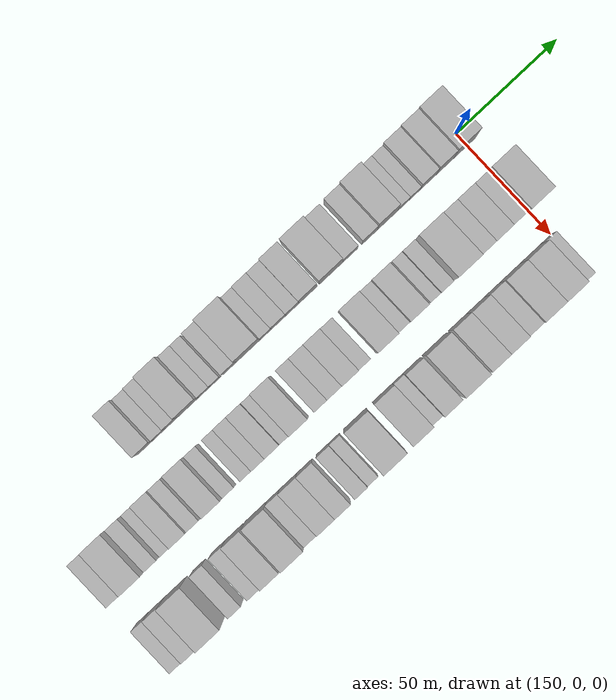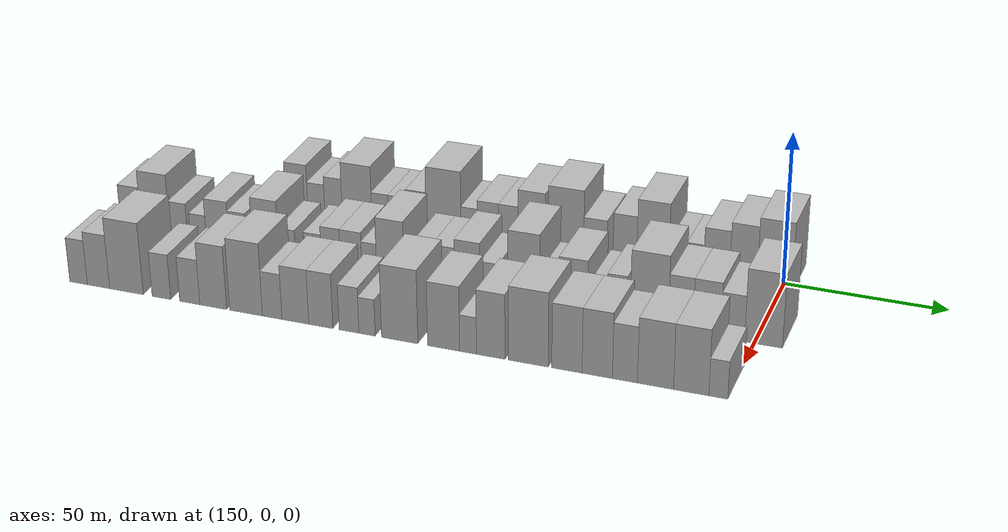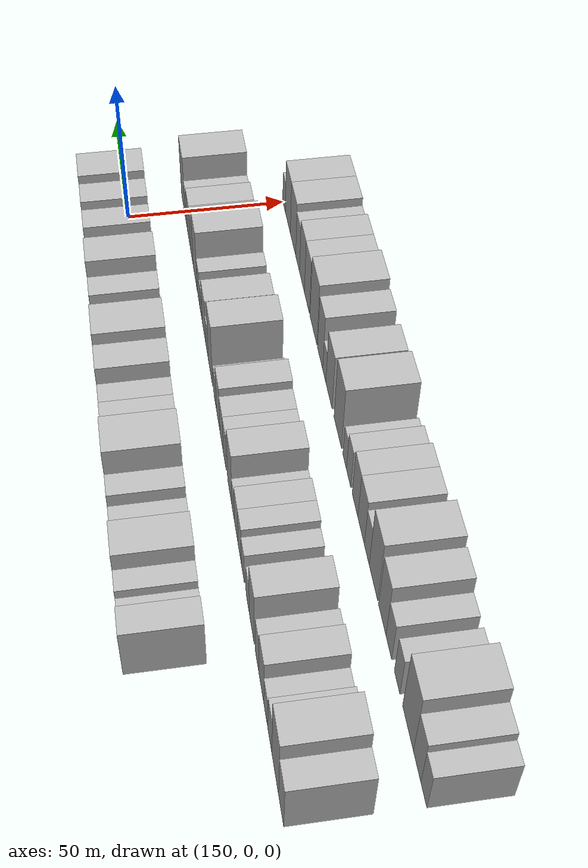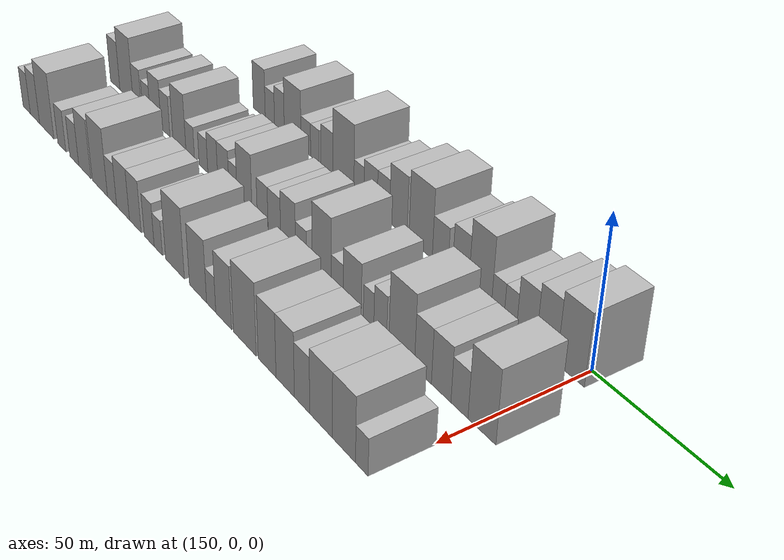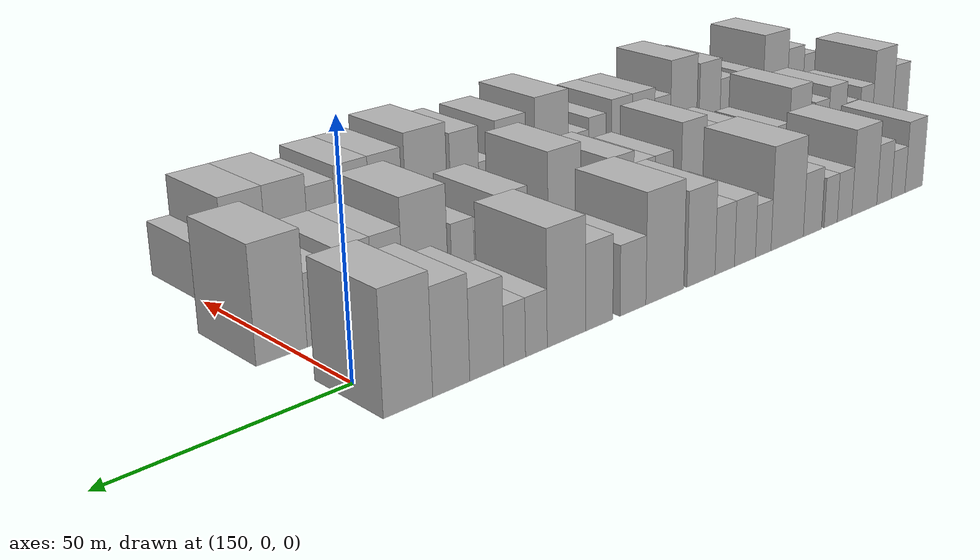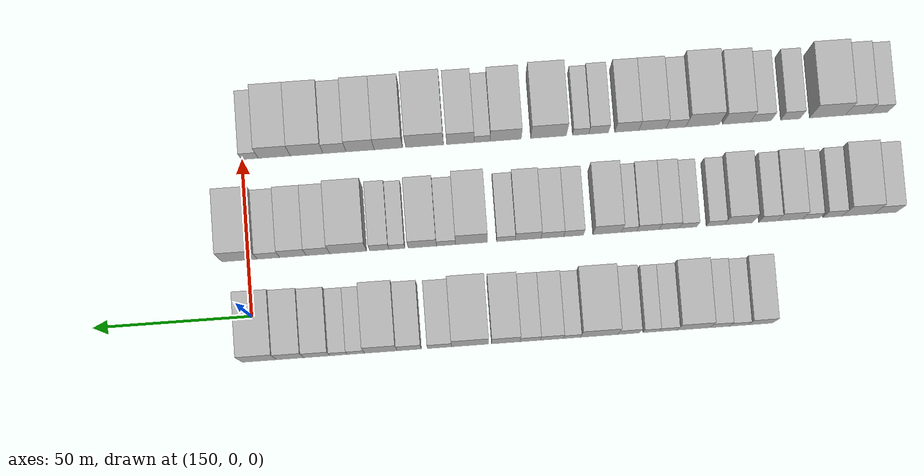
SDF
<sdf version="1.6">
 <world name="default">
  <model name="building_377">
   <static>1</static>
   <pose>146.0000 -158.6741 0 0.000000 0.000000 0.000000</pose>
   <link name="link">
    <pose>0 0 9.00 0 0 0</pose>
    <collision name="collision"><geometry><box><size>20.0000 7.7691 18.0000</size></box></geometry></collision>
    <visual name="visual">
     <cast_shadows>0</cast_shadows>
     <geometry><box><size>20.0000 7.7691 18.0000</size></box></geometry>
     <material>
      <script>
       <uri>model://HANNAS_wall/materials/scripts</uri>
       <uri>model://HANNAS_wall/materials/textures</uri>
       <name>vrc/HANNAS_wall</name>
      </script>
     </material>
    </visual>
   </link>
  </model>
  <model name="building_378">
   <static>1</static>
   <pose>146.0000 -151.8385 0 0.000000 0.000000 0.000000</pose>
   <link name="link">
    <pose>0 0 6.00 0 0 0</pose>
    <collision name="collision"><geometry><box><size>20.0000 5.9021 12.0000</size></box></geometry></collision>
    <visual name="visual">
     <cast_shadows>0</cast_shadows>
     <geometry><box><size>20.0000 5.9021 12.0000</size></box></geometry>
     <material>
      <script>
       <uri>model://HANNAS_wall/materials/scripts</uri>
       <uri>model://HANNAS_wall/materials/textures</uri>
       <name>vrc/HANNAS_wall</name>
      </script>
     </material>
    </visual>
   </link>
  </model>
  <model name="building_379">
   <static>1</static>
   <pose>146.0000 -145.8356 0 0.000000 0.000000 0.000000</pose>
   <link name="link">
    <pose>0 0 7.50 0 0 0</pose>
    <collision name="collision"><geometry><box><size>20.0000 6.1038 15.0000</size></box></geometry></collision>
    <visual name="visual">
     <cast_shadows>0</cast_shadows>
     <geometry><box><size>20.0000 6.1038 15.0000</size></box></geometry>
     <material>
      <script>
       <uri>model://HANNAS_wall/materials/scripts</uri>
       <uri>model://HANNAS_wall/materials/textures</uri>
       <name>vrc/HANNAS_wall</name>
      </script>
     </material>
    </visual>
   </link>
  </model>
  <model name="building_380">
   <static>1</static>
   <pose>146.0000 -137.6751 0 0.000000 0.000000 0.000000</pose>
   <link name="link">
    <pose>0 0 10.50 0 0 0</pose>
    <collision name="collision"><geometry><box><size>20.0000 10.2172 21.0000</size></box></geometry></collision>
    <visual name="visual">
     <cast_shadows>0</cast_shadows>
     <geometry><box><size>20.0000 10.2172 21.0000</size></box></geometry>
     <material>
      <script>
       <uri>model://HANNAS_wall/materials/scripts</uri>
       <uri>model://HANNAS_wall/materials/textures</uri>
       <name>vrc/HANNAS_wall</name>
      </script>
     </material>
    </visual>
   </link>
  </model>
  <model name="building_381">
   <static>1</static>
   <pose>146.0000 -129.6942 0 0.000000 0.000000 0.000000</pose>
   <link name="link">
    <pose>0 0 6.00 0 0 0</pose>
    <collision name="collision"><geometry><box><size>20.0000 5.7446 12.0000</size></box></geometry></collision>
    <visual name="visual">
     <cast_shadows>0</cast_shadows>
     <geometry><box><size>20.0000 5.7446 12.0000</size></box></geometry>
     <material>
      <script>
       <uri>model://HANNAS_wall/materials/scripts</uri>
       <uri>model://HANNAS_wall/materials/textures</uri>
       <name>vrc/HANNAS_wall</name>
      </script>
     </material>
    </visual>
   </link>
  </model>
  <model name="building_382">
   <static>1</static>
   <pose>146.0000 -124.2754 0 0.000000 0.000000 0.000000</pose>
   <link name="link">
    <pose>0 0 6.00 0 0 0</pose>
    <collision name="collision"><geometry><box><size>20.0000 5.0929 12.0000</size></box></geometry></collision>
    <visual name="visual">
     <cast_shadows>0</cast_shadows>
     <geometry><box><size>20.0000 5.0929 12.0000</size></box></geometry>
     <material>
      <script>
       <uri>model://HANNAS_wall/materials/scripts</uri>
       <uri>model://HANNAS_wall/materials/textures</uri>
       <name>vrc/HANNAS_wall</name>
      </script>
     </material>
    </visual>
   </link>
  </model>
  <model name="building_383">
   <static>1</static>
   <pose>146.0000 -117.3075 0 0.000000 0.000000 0.000000</pose>
   <link name="link">
    <pose>0 0 7.50 0 0 0</pose>
    <collision name="collision"><geometry><box><size>20.0000 6.8428 15.0000</size></box></geometry></collision>
    <visual name="visual">
     <cast_shadows>0</cast_shadows>
     <geometry><box><size>20.0000 6.8428 15.0000</size></box></geometry>
     <material>
      <script>
       <uri>model://HANNAS_wall/materials/scripts</uri>
       <uri>model://HANNAS_wall/materials/textures</uri>
       <name>vrc/HANNAS_wall</name>
      </script>
     </material>
    </visual>
   </link>
  </model>
  <model name="building_384">
   <static>1</static>
   <pose>146.0000 -108.0203 0 0.000000 0.000000 0.000000</pose>
   <link name="link">
    <pose>0 0 12.00 0 0 0</pose>
    <collision name="collision"><geometry><box><size>20.0000 11.7317 24.0000</size></box></geometry></collision>
    <visual name="visual">
     <cast_shadows>0</cast_shadows>
     <geometry><box><size>20.0000 11.7317 24.0000</size></box></geometry>
     <material>
      <script>
       <uri>model://HANNAS_wall/materials/scripts</uri>
       <uri>model://HANNAS_wall/materials/textures</uri>
       <name>vrc/HANNAS_wall</name>
      </script>
     </material>
    </visual>
   </link>
  </model>
  <model name="building_385">
   <static>1</static>
   <pose>146.0000 -99.4421 0 0.000000 0.000000 0.000000</pose>
   <link name="link">
    <pose>0 0 6.00 0 0 0</pose>
    <collision name="collision"><geometry><box><size>20.0000 5.4247 12.0000</size></box></geometry></collision>
    <visual name="visual">
     <cast_shadows>0</cast_shadows>
     <geometry><box><size>20.0000 5.4247 12.0000</size></box></geometry>
     <material>
      <script>
       <uri>model://HANNAS_wall/materials/scripts</uri>
       <uri>model://HANNAS_wall/materials/textures</uri>
       <name>vrc/HANNAS_wall</name>
      </script>
     </material>
    </visual>
   </link>
  </model>
  <model name="building_386">
   <static>1</static>
   <pose>146.0000 -93.1561 0 0.000000 0.000000 0.000000</pose>
   <link name="link">
    <pose>0 0 7.50 0 0 0</pose>
    <collision name="collision"><geometry><box><size>20.0000 7.1473 15.0000</size></box></geometry></collision>
    <visual name="visual">
     <cast_shadows>0</cast_shadows>
     <geometry><box><size>20.0000 7.1473 15.0000</size></box></geometry>
     <material>
      <script>
       <uri>model://HANNAS_wall/materials/scripts</uri>
       <uri>model://HANNAS_wall/materials/textures</uri>
       <name>vrc/HANNAS_wall</name>
      </script>
     </material>
    </visual>
   </link>
  </model>
  <model name="building_387">
   <static>1</static>
   <pose>146.0000 -86.3762 0 0.000000 0.000000 0.000000</pose>
   <link name="link">
    <pose>0 0 7.50 0 0 0</pose>
    <collision name="collision"><geometry><box><size>20.0000 6.4125 15.0000</size></box></geometry></collision>
    <visual name="visual">
     <cast_shadows>0</cast_shadows>
     <geometry><box><size>20.0000 6.4125 15.0000</size></box></geometry>
     <material>
      <script>
       <uri>model://HANNAS_wall/materials/scripts</uri>
       <uri>model://HANNAS_wall/materials/textures</uri>
       <name>vrc/HANNAS_wall</name>
      </script>
     </material>
    </visual>
   </link>
  </model>
  <model name="building_388">
   <static>1</static>
   <pose>146.0000 -78.7064 0 0.000000 0.000000 0.000000</pose>
   <link name="link">
    <pose>0 0 10.50 0 0 0</pose>
    <collision name="collision"><geometry><box><size>20.0000 8.9271 21.0000</size></box></geometry></collision>
    <visual name="visual">
     <cast_shadows>0</cast_shadows>
     <geometry><box><size>20.0000 8.9271 21.0000</size></box></geometry>
     <material>
      <script>
       <uri>model://HANNAS_wall/materials/scripts</uri>
       <uri>model://HANNAS_wall/materials/textures</uri>
       <name>vrc/HANNAS_wall</name>
      </script>
     </material>
    </visual>
   </link>
  </model>
  <model name="building_389">
   <static>1</static>
   <pose>146.0000 -67.4989 0 0.000000 0.000000 0.000000</pose>
   <link name="link">
    <pose>0 0 12.00 0 0 0</pose>
    <collision name="collision"><geometry><box><size>20.0000 11.4879 24.0000</size></box></geometry></collision>
    <visual name="visual">
     <cast_shadows>0</cast_shadows>
     <geometry><box><size>20.0000 11.4879 24.0000</size></box></geometry>
     <material>
      <script>
       <uri>model://HANNAS_wall/materials/scripts</uri>
       <uri>model://HANNAS_wall/materials/textures</uri>
       <name>vrc/HANNAS_wall</name>
      </script>
     </material>
    </visual>
   </link>
  </model>
  <model name="building_390">
   <static>1</static>
   <pose>146.0000 -58.0126 0 0.000000 0.000000 0.000000</pose>
   <link name="link">
    <pose>0 0 7.50 0 0 0</pose>
    <collision name="collision"><geometry><box><size>20.0000 7.4848 15.0000</size></box></geometry></collision>
    <visual name="visual">
     <cast_shadows>0</cast_shadows>
     <geometry><box><size>20.0000 7.4848 15.0000</size></box></geometry>
     <material>
      <script>
       <uri>model://HANNAS_wall/materials/scripts</uri>
       <uri>model://HANNAS_wall/materials/textures</uri>
       <name>vrc/HANNAS_wall</name>
      </script>
     </material>
    </visual>
   </link>
  </model>
  <model name="building_391">
   <static>1</static>
   <pose>146.0000 -48.4838 0 0.000000 0.000000 0.000000</pose>
   <link name="link">
    <pose>0 0 9.00 0 0 0</pose>
    <collision name="collision"><geometry><box><size>20.0000 7.5729 18.0000</size></box></geometry></collision>
    <visual name="visual">
     <cast_shadows>0</cast_shadows>
     <geometry><box><size>20.0000 7.5729 18.0000</size></box></geometry>
     <material>
      <script>
       <uri>model://HANNAS_wall/materials/scripts</uri>
       <uri>model://HANNAS_wall/materials/textures</uri>
       <name>vrc/HANNAS_wall</name>
      </script>
     </material>
    </visual>
   </link>
  </model>
  <model name="building_392">
   <static>1</static>
   <pose>146.0000 -39.6119 0 0.000000 0.000000 0.000000</pose>
   <link name="link">
    <pose>0 0 12.00 0 0 0</pose>
    <collision name="collision"><geometry><box><size>20.0000 10.1710 24.0000</size></box></geometry></collision>
    <visual name="visual">
     <cast_shadows>0</cast_shadows>
     <geometry><box><size>20.0000 10.1710 24.0000</size></box></geometry>
     <material>
      <script>
       <uri>model://HANNAS_wall/materials/scripts</uri>
       <uri>model://HANNAS_wall/materials/textures</uri>
       <name>vrc/HANNAS_wall</name>
      </script>
     </material>
    </visual>
   </link>
  </model>
  <model name="building_393">
   <static>1</static>
   <pose>146.0000 -31.7596 0 0.000000 0.000000 0.000000</pose>
   <link name="link">
    <pose>0 0 6.00 0 0 0</pose>
    <collision name="collision"><geometry><box><size>20.0000 5.5335 12.0000</size></box></geometry></collision>
    <visual name="visual">
     <cast_shadows>0</cast_shadows>
     <geometry><box><size>20.0000 5.5335 12.0000</size></box></geometry>
     <material>
      <script>
       <uri>model://HANNAS_wall/materials/scripts</uri>
       <uri>model://HANNAS_wall/materials/textures</uri>
       <name>vrc/HANNAS_wall</name>
      </script>
     </material>
    </visual>
   </link>
  </model>
  <model name="building_394">
   <static>1</static>
   <pose>146.0000 -26.3055 0 0.000000 0.000000 0.000000</pose>
   <link name="link">
    <pose>0 0 6.00 0 0 0</pose>
    <collision name="collision"><geometry><box><size>20.0000 5.3748 12.0000</size></box></geometry></collision>
    <visual name="visual">
     <cast_shadows>0</cast_shadows>
     <geometry><box><size>20.0000 5.3748 12.0000</size></box></geometry>
     <material>
      <script>
       <uri>model://HANNAS_wall/materials/scripts</uri>
       <uri>model://HANNAS_wall/materials/textures</uri>
       <name>vrc/HANNAS_wall</name>
      </script>
     </material>
    </visual>
   </link>
  </model>
  <model name="building_395">
   <static>1</static>
   <pose>146.0000 -19.5446 0 0.000000 0.000000 0.000000</pose>
   <link name="link">
    <pose>0 0 9.00 0 0 0</pose>
    <collision name="collision"><geometry><box><size>20.0000 8.1469 18.0000</size></box></geometry></collision>
    <visual name="visual">
     <cast_shadows>0</cast_shadows>
     <geometry><box><size>20.0000 8.1469 18.0000</size></box></geometry>
     <material>
      <script>
       <uri>model://HANNAS_wall/materials/scripts</uri>
       <uri>model://HANNAS_wall/materials/textures</uri>
       <name>vrc/HANNAS_wall</name>
      </script>
     </material>
    </visual>
   </link>
  </model>
  <model name="building_396">
   <static>1</static>
   <pose>146.0000 -11.2219 0 0.000000 0.000000 0.000000</pose>
   <link name="link">
    <pose>0 0 10.50 0 0 0</pose>
    <collision name="collision"><geometry><box><size>20.0000 8.4985 21.0000</size></box></geometry></collision>
    <visual name="visual">
     <cast_shadows>0</cast_shadows>
     <geometry><box><size>20.0000 8.4985 21.0000</size></box></geometry>
     <material>
      <script>
       <uri>model://HANNAS_wall/materials/scripts</uri>
       <uri>model://HANNAS_wall/materials/textures</uri>
       <name>vrc/HANNAS_wall</name>
      </script>
     </material>
    </visual>
   </link>
  </model>
  <model name="building_397">
   <static>1</static>
   <pose>146.0000 -1.5701 0 0.000000 0.000000 0.000000</pose>
   <link name="link">
    <pose>0 0 12.00 0 0 0</pose>
    <collision name="collision"><geometry><box><size>20.0000 10.8052 24.0000</size></box></geometry></collision>
    <visual name="visual">
     <cast_shadows>0</cast_shadows>
     <geometry><box><size>20.0000 10.8052 24.0000</size></box></geometry>
     <material>
      <script>
       <uri>model://HANNAS_wall/materials/scripts</uri>
       <uri>model://HANNAS_wall/materials/textures</uri>
       <name>vrc/HANNAS_wall</name>
      </script>
     </material>
    </visual>
   </link>
  </model>
  <model name="building_499">
   <static>1</static>
   <pose>178.0000 -201.0829 0 0.000000 0.000000 0.000000</pose>
   <link name="link">
    <pose>0 0 9.00 0 0 0</pose>
    <collision name="collision"><geometry><box><size>20.0000 7.2531 18.0000</size></box></geometry></collision>
    <visual name="visual">
     <cast_shadows>0</cast_shadows>
     <geometry><box><size>20.0000 7.2531 18.0000</size></box></geometry>
     <material>
      <script>
       <uri>model://HANNAS_wall/materials/scripts</uri>
       <uri>model://HANNAS_wall/materials/textures</uri>
       <name>vrc/HANNAS_wall</name>
      </script>
     </material>
    </visual>
   </link>
  </model>
  <model name="building_500">
   <static>1</static>
   <pose>178.0000 -192.4599 0 0.000000 0.000000 0.000000</pose>
   <link name="link">
    <pose>0 0 12.00 0 0 0</pose>
    <collision name="collision"><geometry><box><size>20.0000 9.9929 24.0000</size></box></geometry></collision>
    <visual name="visual">
     <cast_shadows>0</cast_shadows>
     <geometry><box><size>20.0000 9.9929 24.0000</size></box></geometry>
     <material>
      <script>
       <uri>model://HANNAS_wall/materials/scripts</uri>
       <uri>model://HANNAS_wall/materials/textures</uri>
       <name>vrc/HANNAS_wall</name>
      </script>
     </material>
    </visual>
   </link>
  </model>
  <model name="building_501">
   <static>1</static>
   <pose>178.0000 -184.4135 0 0.000000 0.000000 0.000000</pose>
   <link name="link">
    <pose>0 0 7.50 0 0 0</pose>
    <collision name="collision"><geometry><box><size>20.0000 6.0998 15.0000</size></box></geometry></collision>
    <visual name="visual">
     <cast_shadows>0</cast_shadows>
     <geometry><box><size>20.0000 6.0998 15.0000</size></box></geometry>
     <material>
      <script>
       <uri>model://HANNAS_wall/materials/scripts</uri>
       <uri>model://HANNAS_wall/materials/textures</uri>
       <name>vrc/HANNAS_wall</name>
      </script>
     </material>
    </visual>
   </link>
  </model>
  <model name="building_502">
   <static>1</static>
   <pose>178.0000 -177.6121 0 0.000000 0.000000 0.000000</pose>
   <link name="link">
    <pose>0 0 6.00 0 0 0</pose>
    <collision name="collision"><geometry><box><size>20.0000 5.5030 12.0000</size></box></geometry></collision>
    <visual name="visual">
     <cast_shadows>0</cast_shadows>
     <geometry><box><size>20.0000 5.5030 12.0000</size></box></geometry>
     <material>
      <script>
       <uri>model://HANNAS_wall/materials/scripts</uri>
       <uri>model://HANNAS_wall/materials/textures</uri>
       <name>vrc/HANNAS_wall</name>
      </script>
     </material>
    </visual>
   </link>
  </model>
  <model name="building_503">
   <static>1</static>
   <pose>178.0000 -170.9659 0 0.000000 0.000000 0.000000</pose>
   <link name="link">
    <pose>0 0 9.00 0 0 0</pose>
    <collision name="collision"><geometry><box><size>20.0000 7.7895 18.0000</size></box></geometry></collision>
    <visual name="visual">
     <cast_shadows>0</cast_shadows>
     <geometry><box><size>20.0000 7.7895 18.0000</size></box></geometry>
     <material>
      <script>
       <uri>model://HANNAS_wall/materials/scripts</uri>
       <uri>model://HANNAS_wall/materials/textures</uri>
       <name>vrc/HANNAS_wall</name>
      </script>
     </material>
    </visual>
   </link>
  </model>
  <model name="building_504">
   <static>1</static>
   <pose>178.0000 -164.0448 0 0.000000 0.000000 0.000000</pose>
   <link name="link">
    <pose>0 0 7.50 0 0 0</pose>
    <collision name="collision"><geometry><box><size>20.0000 6.0526 15.0000</size></box></geometry></collision>
    <visual name="visual">
     <cast_shadows>0</cast_shadows>
     <geometry><box><size>20.0000 6.0526 15.0000</size></box></geometry>
     <material>
      <script>
       <uri>model://HANNAS_wall/materials/scripts</uri>
       <uri>model://HANNAS_wall/materials/textures</uri>
       <name>vrc/HANNAS_wall</name>
      </script>
     </material>
    </visual>
   </link>
  </model>
  <model name="building_505">
   <static>1</static>
   <pose>178.0000 -154.5836 0 0.000000 0.000000 0.000000</pose>
   <link name="link">
    <pose>0 0 10.50 0 0 0</pose>
    <collision name="collision"><geometry><box><size>20.0000 8.8698 21.0000</size></box></geometry></collision>
    <visual name="visual">
     <cast_shadows>0</cast_shadows>
     <geometry><box><size>20.0000 8.8698 21.0000</size></box></geometry>
     <material>
      <script>
       <uri>model://HANNAS_wall/materials/scripts</uri>
       <uri>model://HANNAS_wall/materials/textures</uri>
       <name>vrc/HANNAS_wall</name>
      </script>
     </material>
    </visual>
   </link>
  </model>
  <model name="building_506">
   <static>1</static>
   <pose>178.0000 -147.3077 0 0.000000 0.000000 0.000000</pose>
   <link name="link">
    <pose>0 0 6.00 0 0 0</pose>
    <collision name="collision"><geometry><box><size>20.0000 5.6819 12.0000</size></box></geometry></collision>
    <visual name="visual">
     <cast_shadows>0</cast_shadows>
     <geometry><box><size>20.0000 5.6819 12.0000</size></box></geometry>
     <material>
      <script>
       <uri>model://HANNAS_wall/materials/scripts</uri>
       <uri>model://HANNAS_wall/materials/textures</uri>
       <name>vrc/HANNAS_wall</name>
      </script>
     </material>
    </visual>
   </link>
  </model>
  <model name="building_507">
   <static>1</static>
   <pose>178.0000 -138.6546 0 0.000000 0.000000 0.000000</pose>
   <link name="link">
    <pose>0 0 6.00 0 0 0</pose>
    <collision name="collision"><geometry><box><size>20.0000 5.6244 12.0000</size></box></geometry></collision>
    <visual name="visual">
     <cast_shadows>0</cast_shadows>
     <geometry><box><size>20.0000 5.6244 12.0000</size></box></geometry>
     <material>
      <script>
       <uri>model://HANNAS_wall/materials/scripts</uri>
       <uri>model://HANNAS_wall/materials/textures</uri>
       <name>vrc/HANNAS_wall</name>
      </script>
     </material>
    </visual>
   </link>
  </model>
  <model name="building_508">
   <static>1</static>
   <pose>178.0000 -132.6649 0 0.000000 0.000000 0.000000</pose>
   <link name="link">
    <pose>0 0 7.50 0 0 0</pose>
    <collision name="collision"><geometry><box><size>20.0000 6.3550 15.0000</size></box></geometry></collision>
    <visual name="visual">
     <cast_shadows>0</cast_shadows>
     <geometry><box><size>20.0000 6.3550 15.0000</size></box></geometry>
     <material>
      <script>
       <uri>model://HANNAS_wall/materials/scripts</uri>
       <uri>model://HANNAS_wall/materials/textures</uri>
       <name>vrc/HANNAS_wall</name>
      </script>
     </material>
    </visual>
   </link>
  </model>
  <model name="building_509">
   <static>1</static>
   <pose>178.0000 -125.9829 0 0.000000 0.000000 0.000000</pose>
   <link name="link">
    <pose>0 0 7.50 0 0 0</pose>
    <collision name="collision"><geometry><box><size>20.0000 7.0088 15.0000</size></box></geometry></collision>
    <visual name="visual">
     <cast_shadows>0</cast_shadows>
     <geometry><box><size>20.0000 7.0088 15.0000</size></box></geometry>
     <material>
      <script>
       <uri>model://HANNAS_wall/materials/scripts</uri>
       <uri>model://HANNAS_wall/materials/textures</uri>
       <name>vrc/HANNAS_wall</name>
      </script>
     </material>
    </visual>
   </link>
  </model>
  <model name="building_510">
   <static>1</static>
   <pose>178.0000 -120.0160 0 0.000000 0.000000 0.000000</pose>
   <link name="link">
    <pose>0 0 6.00 0 0 0</pose>
    <collision name="collision"><geometry><box><size>20.0000 4.9250 12.0000</size></box></geometry></collision>
    <visual name="visual">
     <cast_shadows>0</cast_shadows>
     <geometry><box><size>20.0000 4.9250 12.0000</size></box></geometry>
     <material>
      <script>
       <uri>model://HANNAS_wall/materials/scripts</uri>
       <uri>model://HANNAS_wall/materials/textures</uri>
       <name>vrc/HANNAS_wall</name>
      </script>
     </material>
    </visual>
   </link>
  </model>
  <model name="building_511">
   <static>1</static>
   <pose>178.0000 -113.0868 0 0.000000 0.000000 0.000000</pose>
   <link name="link">
    <pose>0 0 10.50 0 0 0</pose>
    <collision name="collision"><geometry><box><size>20.0000 8.9333 21.0000</size></box></geometry></collision>
    <visual name="visual">
     <cast_shadows>0</cast_shadows>
     <geometry><box><size>20.0000 8.9333 21.0000</size></box></geometry>
     <material>
      <script>
       <uri>model://HANNAS_wall/materials/scripts</uri>
       <uri>model://HANNAS_wall/materials/textures</uri>
       <name>vrc/HANNAS_wall</name>
      </script>
     </material>
    </visual>
   </link>
  </model>
  <model name="building_512">
   <static>1</static>
   <pose>178.0000 -102.5026 0 0.000000 0.000000 0.000000</pose>
   <link name="link">
    <pose>0 0 7.50 0 0 0</pose>
    <collision name="collision"><geometry><box><size>20.0000 6.2351 15.0000</size></box></geometry></collision>
    <visual name="visual">
     <cast_shadows>0</cast_shadows>
     <geometry><box><size>20.0000 6.2351 15.0000</size></box></geometry>
     <material>
      <script>
       <uri>model://HANNAS_wall/materials/scripts</uri>
       <uri>model://HANNAS_wall/materials/textures</uri>
       <name>vrc/HANNAS_wall</name>
      </script>
     </material>
    </visual>
   </link>
  </model>
  <model name="building_513">
   <static>1</static>
   <pose>178.0000 -95.8142 0 0.000000 0.000000 0.000000</pose>
   <link name="link">
    <pose>0 0 7.50 0 0 0</pose>
    <collision name="collision"><geometry><box><size>20.0000 7.1418 15.0000</size></box></geometry></collision>
    <visual name="visual">
     <cast_shadows>0</cast_shadows>
     <geometry><box><size>20.0000 7.1418 15.0000</size></box></geometry>
     <material>
      <script>
       <uri>model://HANNAS_wall/materials/scripts</uri>
       <uri>model://HANNAS_wall/materials/textures</uri>
       <name>vrc/HANNAS_wall</name>
      </script>
     </material>
    </visual>
   </link>
  </model>
  <model name="building_514">
   <static>1</static>
   <pose>178.0000 -88.1749 0 0.000000 0.000000 0.000000</pose>
   <link name="link">
    <pose>0 0 9.00 0 0 0</pose>
    <collision name="collision"><geometry><box><size>20.0000 8.1367 18.0000</size></box></geometry></collision>
    <visual name="visual">
     <cast_shadows>0</cast_shadows>
     <geometry><box><size>20.0000 8.1367 18.0000</size></box></geometry>
     <material>
      <script>
       <uri>model://HANNAS_wall/materials/scripts</uri>
       <uri>model://HANNAS_wall/materials/textures</uri>
       <name>vrc/HANNAS_wall</name>
      </script>
     </material>
    </visual>
   </link>
  </model>
  <model name="building_515">
   <static>1</static>
   <pose>178.0000 -81.1768 0 0.000000 0.000000 0.000000</pose>
   <link name="link">
    <pose>0 0 6.00 0 0 0</pose>
    <collision name="collision"><geometry><box><size>20.0000 5.8596 12.0000</size></box></geometry></collision>
    <visual name="visual">
     <cast_shadows>0</cast_shadows>
     <geometry><box><size>20.0000 5.8596 12.0000</size></box></geometry>
     <material>
      <script>
       <uri>model://HANNAS_wall/materials/scripts</uri>
       <uri>model://HANNAS_wall/materials/textures</uri>
       <name>vrc/HANNAS_wall</name>
      </script>
     </material>
    </visual>
   </link>
  </model>
  <model name="building_516">
   <static>1</static>
   <pose>178.0000 -70.2776 0 0.000000 0.000000 0.000000</pose>
   <link name="link">
    <pose>0 0 12.00 0 0 0</pose>
    <collision name="collision"><geometry><box><size>20.0000 9.9387 24.0000</size></box></geometry></collision>
    <visual name="visual">
     <cast_shadows>0</cast_shadows>
     <geometry><box><size>20.0000 9.9387 24.0000</size></box></geometry>
     <material>
      <script>
       <uri>model://HANNAS_wall/materials/scripts</uri>
       <uri>model://HANNAS_wall/materials/textures</uri>
       <name>vrc/HANNAS_wall</name>
      </script>
     </material>
    </visual>
   </link>
  </model>
  <model name="building_517">
   <static>1</static>
   <pose>178.0000 -62.3116 0 0.000000 0.000000 0.000000</pose>
   <link name="link">
    <pose>0 0 6.00 0 0 0</pose>
    <collision name="collision"><geometry><box><size>20.0000 5.9933 12.0000</size></box></geometry></collision>
    <visual name="visual">
     <cast_shadows>0</cast_shadows>
     <geometry><box><size>20.0000 5.9933 12.0000</size></box></geometry>
     <material>
      <script>
       <uri>model://HANNAS_wall/materials/scripts</uri>
       <uri>model://HANNAS_wall/materials/textures</uri>
       <name>vrc/HANNAS_wall</name>
      </script>
     </material>
    </visual>
   </link>
  </model>
  <model name="building_518">
   <static>1</static>
   <pose>178.0000 -54.8487 0 0.000000 0.000000 0.000000</pose>
   <link name="link">
    <pose>0 0 9.00 0 0 0</pose>
    <collision name="collision"><geometry><box><size>20.0000 8.9326 18.0000</size></box></geometry></collision>
    <visual name="visual">
     <cast_shadows>0</cast_shadows>
     <geometry><box><size>20.0000 8.9326 18.0000</size></box></geometry>
     <material>
      <script>
       <uri>model://HANNAS_wall/materials/scripts</uri>
       <uri>model://HANNAS_wall/materials/textures</uri>
       <name>vrc/HANNAS_wall</name>
      </script>
     </material>
    </visual>
   </link>
  </model>
  <model name="building_519">
   <static>1</static>
   <pose>178.0000 -46.8706 0 0.000000 0.000000 0.000000</pose>
   <link name="link">
    <pose>0 0 6.00 0 0 0</pose>
    <collision name="collision"><geometry><box><size>20.0000 5.0236 12.0000</size></box></geometry></collision>
    <visual name="visual">
     <cast_shadows>0</cast_shadows>
     <geometry><box><size>20.0000 5.0236 12.0000</size></box></geometry>
     <material>
      <script>
       <uri>model://HANNAS_wall/materials/scripts</uri>
       <uri>model://HANNAS_wall/materials/textures</uri>
       <name>vrc/HANNAS_wall</name>
      </script>
     </material>
    </visual>
   </link>
  </model>
  <model name="building_520">
   <static>1</static>
   <pose>178.0000 -41.3242 0 0.000000 0.000000 0.000000</pose>
   <link name="link">
    <pose>0 0 7.50 0 0 0</pose>
    <collision name="collision"><geometry><box><size>20.0000 6.0692 15.0000</size></box></geometry></collision>
    <visual name="visual">
     <cast_shadows>0</cast_shadows>
     <geometry><box><size>20.0000 6.0692 15.0000</size></box></geometry>
     <material>
      <script>
       <uri>model://HANNAS_wall/materials/scripts</uri>
       <uri>model://HANNAS_wall/materials/textures</uri>
       <name>vrc/HANNAS_wall</name>
      </script>
     </material>
    </visual>
   </link>
  </model>
  <model name="building_521">
   <static>1</static>
   <pose>178.0000 -31.4913 0 0.000000 0.000000 0.000000</pose>
   <link name="link">
    <pose>0 0 12.00 0 0 0</pose>
    <collision name="collision"><geometry><box><size>20.0000 11.5966 24.0000</size></box></geometry></collision>
    <visual name="visual">
     <cast_shadows>0</cast_shadows>
     <geometry><box><size>20.0000 11.5966 24.0000</size></box></geometry>
     <material>
      <script>
       <uri>model://HANNAS_wall/materials/scripts</uri>
       <uri>model://HANNAS_wall/materials/textures</uri>
       <name>vrc/HANNAS_wall</name>
      </script>
     </material>
    </visual>
   </link>
  </model>
  <model name="building_522">
   <static>1</static>
   <pose>178.0000 -21.9716 0 0.000000 0.000000 0.000000</pose>
   <link name="link">
    <pose>0 0 9.00 0 0 0</pose>
    <collision name="collision"><geometry><box><size>20.0000 7.4429 18.0000</size></box></geometry></collision>
    <visual name="visual">
     <cast_shadows>0</cast_shadows>
     <geometry><box><size>20.0000 7.4429 18.0000</size></box></geometry>
     <material>
      <script>
       <uri>model://HANNAS_wall/materials/scripts</uri>
       <uri>model://HANNAS_wall/materials/textures</uri>
       <name>vrc/HANNAS_wall</name>
      </script>
     </material>
    </visual>
   </link>
  </model>
  <model name="building_523">
   <static>1</static>
   <pose>178.0000 -14.0890 0 0.000000 0.000000 0.000000</pose>
   <link name="link">
    <pose>0 0 9.00 0 0 0</pose>
    <collision name="collision"><geometry><box><size>20.0000 8.3222 18.0000</size></box></geometry></collision>
    <visual name="visual">
     <cast_shadows>0</cast_shadows>
     <geometry><box><size>20.0000 8.3222 18.0000</size></box></geometry>
     <material>
      <script>
       <uri>model://HANNAS_wall/materials/scripts</uri>
       <uri>model://HANNAS_wall/materials/textures</uri>
       <name>vrc/HANNAS_wall</name>
      </script>
     </material>
    </visual>
   </link>
  </model>
  <model name="building_524">
   <static>1</static>
   <pose>178.0000 -6.4036 0 0.000000 0.000000 0.000000</pose>
   <link name="link">
    <pose>0 0 7.50 0 0 0</pose>
    <collision name="collision"><geometry><box><size>20.0000 7.0486 15.0000</size></box></geometry></collision>
    <visual name="visual">
     <cast_shadows>0</cast_shadows>
     <geometry><box><size>20.0000 7.0486 15.0000</size></box></geometry>
     <material>
      <script>
       <uri>model://HANNAS_wall/materials/scripts</uri>
       <uri>model://HANNAS_wall/materials/textures</uri>
       <name>vrc/HANNAS_wall</name>
      </script>
     </material>
    </visual>
   </link>
  </model>
  <model name="building_525">
   <static>1</static>
   <pose>178.0000 2.7098 0 0.000000 0.000000 0.000000</pose>
   <link name="link">
    <pose>0 0 12.00 0 0 0</pose>
    <collision name="collision"><geometry><box><size>20.0000 11.1782 24.0000</size></box></geometry></collision>
    <visual name="visual">
     <cast_shadows>0</cast_shadows>
     <geometry><box><size>20.0000 11.1782 24.0000</size></box></geometry>
     <material>
      <script>
       <uri>model://HANNAS_wall/materials/scripts</uri>
       <uri>model://HANNAS_wall/materials/textures</uri>
       <name>vrc/HANNAS_wall</name>
      </script>
     </material>
    </visual>
   </link>
  </model>
  <model name="building_622">
   <static>1</static>
   <pose>210.0000 -202.0232 0 0.000000 0.000000 0.000000</pose>
   <link name="link">
    <pose>0 0 7.50 0 0 0</pose>
    <collision name="collision"><geometry><box><size>20.0000 6.0024 15.0000</size></box></geometry></collision>
    <visual name="visual">
     <cast_shadows>0</cast_shadows>
     <geometry><box><size>20.0000 6.0024 15.0000</size></box></geometry>
     <material>
      <script>
       <uri>model://HANNAS_wall/materials/scripts</uri>
       <uri>model://HANNAS_wall/materials/textures</uri>
       <name>vrc/HANNAS_wall</name>
      </script>
     </material>
    </visual>
   </link>
  </model>
  <model name="building_623">
   <static>1</static>
   <pose>210.0000 -195.2301 0 0.000000 0.000000 0.000000</pose>
   <link name="link">
    <pose>0 0 9.00 0 0 0</pose>
    <collision name="collision"><geometry><box><size>20.0000 7.5837 18.0000</size></box></geometry></collision>
    <visual name="visual">
     <cast_shadows>0</cast_shadows>
     <geometry><box><size>20.0000 7.5837 18.0000</size></box></geometry>
     <material>
      <script>
       <uri>model://HANNAS_wall/materials/scripts</uri>
       <uri>model://HANNAS_wall/materials/textures</uri>
       <name>vrc/HANNAS_wall</name>
      </script>
     </material>
    </visual>
   </link>
  </model>
  <model name="building_624">
   <static>1</static>
   <pose>210.0000 -185.7531 0 0.000000 0.000000 0.000000</pose>
   <link name="link">
    <pose>0 0 12.00 0 0 0</pose>
    <collision name="collision"><geometry><box><size>20.0000 11.3703 24.0000</size></box></geometry></collision>
    <visual name="visual">
     <cast_shadows>0</cast_shadows>
     <geometry><box><size>20.0000 11.3703 24.0000</size></box></geometry>
     <material>
      <script>
       <uri>model://HANNAS_wall/materials/scripts</uri>
       <uri>model://HANNAS_wall/materials/textures</uri>
       <name>vrc/HANNAS_wall</name>
      </script>
     </material>
    </visual>
   </link>
  </model>
  <model name="building_625">
   <static>1</static>
   <pose>210.0000 -173.9718 0 0.000000 0.000000 0.000000</pose>
   <link name="link">
    <pose>0 0 7.50 0 0 0</pose>
    <collision name="collision"><geometry><box><size>20.0000 6.1923 15.0000</size></box></geometry></collision>
    <visual name="visual">
     <cast_shadows>0</cast_shadows>
     <geometry><box><size>20.0000 6.1923 15.0000</size></box></geometry>
     <material>
      <script>
       <uri>model://HANNAS_wall/materials/scripts</uri>
       <uri>model://HANNAS_wall/materials/textures</uri>
       <name>vrc/HANNAS_wall</name>
      </script>
     </material>
    </visual>
   </link>
  </model>
  <model name="building_626">
   <static>1</static>
   <pose>210.0000 -164.5462 0 0.000000 0.000000 0.000000</pose>
   <link name="link">
    <pose>0 0 7.50 0 0 0</pose>
    <collision name="collision"><geometry><box><size>20.0000 6.6590 15.0000</size></box></geometry></collision>
    <visual name="visual">
     <cast_shadows>0</cast_shadows>
     <geometry><box><size>20.0000 6.6590 15.0000</size></box></geometry>
     <material>
      <script>
       <uri>model://HANNAS_wall/materials/scripts</uri>
       <uri>model://HANNAS_wall/materials/textures</uri>
       <name>vrc/HANNAS_wall</name>
      </script>
     </material>
    </visual>
   </link>
  </model>
  <model name="building_627">
   <static>1</static>
   <pose>210.0000 -156.7904 0 0.000000 0.000000 0.000000</pose>
   <link name="link">
    <pose>0 0 10.50 0 0 0</pose>
    <collision name="collision"><geometry><box><size>20.0000 8.8526 21.0000</size></box></geometry></collision>
    <visual name="visual">
     <cast_shadows>0</cast_shadows>
     <geometry><box><size>20.0000 8.8526 21.0000</size></box></geometry>
     <material>
      <script>
       <uri>model://HANNAS_wall/materials/scripts</uri>
       <uri>model://HANNAS_wall/materials/textures</uri>
       <name>vrc/HANNAS_wall</name>
      </script>
     </material>
    </visual>
   </link>
  </model>
  <model name="building_628">
   <static>1</static>
   <pose>210.0000 -146.0246 0 0.000000 0.000000 0.000000</pose>
   <link name="link">
    <pose>0 0 12.00 0 0 0</pose>
    <collision name="collision"><geometry><box><size>20.0000 10.6788 24.0000</size></box></geometry></collision>
    <visual name="visual">
     <cast_shadows>0</cast_shadows>
     <geometry><box><size>20.0000 10.6788 24.0000</size></box></geometry>
     <material>
      <script>
       <uri>model://HANNAS_wall/materials/scripts</uri>
       <uri>model://HANNAS_wall/materials/textures</uri>
       <name>vrc/HANNAS_wall</name>
      </script>
     </material>
    </visual>
   </link>
  </model>
  <model name="building_629">
   <static>1</static>
   <pose>210.0000 -137.5486 0 0.000000 0.000000 0.000000</pose>
   <link name="link">
    <pose>0 0 7.50 0 0 0</pose>
    <collision name="collision"><geometry><box><size>20.0000 6.2732 15.0000</size></box></geometry></collision>
    <visual name="visual">
     <cast_shadows>0</cast_shadows>
     <geometry><box><size>20.0000 6.2732 15.0000</size></box></geometry>
     <material>
      <script>
       <uri>model://HANNAS_wall/materials/scripts</uri>
       <uri>model://HANNAS_wall/materials/textures</uri>
       <name>vrc/HANNAS_wall</name>
      </script>
     </material>
    </visual>
   </link>
  </model>
  <model name="building_630">
   <static>1</static>
   <pose>210.0000 -130.1111 0 0.000000 0.000000 0.000000</pose>
   <link name="link">
    <pose>0 0 9.00 0 0 0</pose>
    <collision name="collision"><geometry><box><size>20.0000 8.6018 18.0000</size></box></geometry></collision>
    <visual name="visual">
     <cast_shadows>0</cast_shadows>
     <geometry><box><size>20.0000 8.6018 18.0000</size></box></geometry>
     <material>
      <script>
       <uri>model://HANNAS_wall/materials/scripts</uri>
       <uri>model://HANNAS_wall/materials/textures</uri>
       <name>vrc/HANNAS_wall</name>
      </script>
     </material>
    </visual>
   </link>
  </model>
  <model name="building_631">
   <static>1</static>
   <pose>210.0000 -121.9644 0 0.000000 0.000000 0.000000</pose>
   <link name="link">
    <pose>0 0 9.00 0 0 0</pose>
    <collision name="collision"><geometry><box><size>20.0000 7.6916 18.0000</size></box></geometry></collision>
    <visual name="visual">
     <cast_shadows>0</cast_shadows>
     <geometry><box><size>20.0000 7.6916 18.0000</size></box></geometry>
     <material>
      <script>
       <uri>model://HANNAS_wall/materials/scripts</uri>
       <uri>model://HANNAS_wall/materials/textures</uri>
       <name>vrc/HANNAS_wall</name>
      </script>
     </material>
    </visual>
   </link>
  </model>
  <model name="building_632">
   <static>1</static>
   <pose>210.0000 -112.9991 0 0.000000 0.000000 0.000000</pose>
   <link name="link">
    <pose>0 0 7.50 0 0 0</pose>
    <collision name="collision"><geometry><box><size>20.0000 6.2390 15.0000</size></box></geometry></collision>
    <visual name="visual">
     <cast_shadows>0</cast_shadows>
     <geometry><box><size>20.0000 6.2390 15.0000</size></box></geometry>
     <material>
      <script>
       <uri>model://HANNAS_wall/materials/scripts</uri>
       <uri>model://HANNAS_wall/materials/textures</uri>
       <name>vrc/HANNAS_wall</name>
      </script>
     </material>
    </visual>
   </link>
  </model>
  <model name="building_633">
   <static>1</static>
   <pose>210.0000 -107.3138 0 0.000000 0.000000 0.000000</pose>
   <link name="link">
    <pose>0 0 6.00 0 0 0</pose>
    <collision name="collision"><geometry><box><size>20.0000 5.1316 12.0000</size></box></geometry></collision>
    <visual name="visual">
     <cast_shadows>0</cast_shadows>
     <geometry><box><size>20.0000 5.1316 12.0000</size></box></geometry>
     <material>
      <script>
       <uri>model://HANNAS_wall/materials/scripts</uri>
       <uri>model://HANNAS_wall/materials/textures</uri>
       <name>vrc/HANNAS_wall</name>
      </script>
     </material>
    </visual>
   </link>
  </model>
  <model name="building_634">
   <static>1</static>
   <pose>210.0000 -97.1018 0 0.000000 0.000000 0.000000</pose>
   <link name="link">
    <pose>0 0 12.00 0 0 0</pose>
    <collision name="collision"><geometry><box><size>20.0000 11.2924 24.0000</size></box></geometry></collision>
    <visual name="visual">
     <cast_shadows>0</cast_shadows>
     <geometry><box><size>20.0000 11.2924 24.0000</size></box></geometry>
     <material>
      <script>
       <uri>model://HANNAS_wall/materials/scripts</uri>
       <uri>model://HANNAS_wall/materials/textures</uri>
       <name>vrc/HANNAS_wall</name>
      </script>
     </material>
    </visual>
   </link>
  </model>
  <model name="building_635">
   <static>1</static>
   <pose>210.0000 -83.5336 0 0.000000 0.000000 0.000000</pose>
   <link name="link">
    <pose>0 0 10.50 0 0 0</pose>
    <collision name="collision"><geometry><box><size>20.0000 9.8442 21.0000</size></box></geometry></collision>
    <visual name="visual">
     <cast_shadows>0</cast_shadows>
     <geometry><box><size>20.0000 9.8442 21.0000</size></box></geometry>
     <material>
      <script>
       <uri>model://HANNAS_wall/materials/scripts</uri>
       <uri>model://HANNAS_wall/materials/textures</uri>
       <name>vrc/HANNAS_wall</name>
      </script>
     </material>
    </visual>
   </link>
  </model>
  <model name="building_636">
   <static>1</static>
   <pose>210.0000 -76.0448 0 0.000000 0.000000 0.000000</pose>
   <link name="link">
    <pose>0 0 6.00 0 0 0</pose>
    <collision name="collision"><geometry><box><size>20.0000 5.1332 12.0000</size></box></geometry></collision>
    <visual name="visual">
     <cast_shadows>0</cast_shadows>
     <geometry><box><size>20.0000 5.1332 12.0000</size></box></geometry>
     <material>
      <script>
       <uri>model://HANNAS_wall/materials/scripts</uri>
       <uri>model://HANNAS_wall/materials/textures</uri>
       <name>vrc/HANNAS_wall</name>
      </script>
     </material>
    </visual>
   </link>
  </model>
  <model name="building_637">
   <static>1</static>
   <pose>210.0000 -69.1537 0 0.000000 0.000000 0.000000</pose>
   <link name="link">
    <pose>0 0 10.50 0 0 0</pose>
    <collision name="collision"><geometry><box><size>20.0000 8.6491 21.0000</size></box></geometry></collision>
    <visual name="visual">
     <cast_shadows>0</cast_shadows>
     <geometry><box><size>20.0000 8.6491 21.0000</size></box></geometry>
     <material>
      <script>
       <uri>model://HANNAS_wall/materials/scripts</uri>
       <uri>model://HANNAS_wall/materials/textures</uri>
       <name>vrc/HANNAS_wall</name>
      </script>
     </material>
    </visual>
   </link>
  </model>
  <model name="building_638">
   <static>1</static>
   <pose>210.0000 -57.8374 0 0.000000 0.000000 0.000000</pose>
   <link name="link">
    <pose>0 0 12.00 0 0 0</pose>
    <collision name="collision"><geometry><box><size>20.0000 11.9835 24.0000</size></box></geometry></collision>
    <visual name="visual">
     <cast_shadows>0</cast_shadows>
     <geometry><box><size>20.0000 11.9835 24.0000</size></box></geometry>
     <material>
      <script>
       <uri>model://HANNAS_wall/materials/scripts</uri>
       <uri>model://HANNAS_wall/materials/textures</uri>
       <name>vrc/HANNAS_wall</name>
      </script>
     </material>
    </visual>
   </link>
  </model>
  <model name="building_639">
   <static>1</static>
   <pose>210.0000 -46.3428 0 0.000000 0.000000 0.000000</pose>
   <link name="link">
    <pose>0 0 10.50 0 0 0</pose>
    <collision name="collision"><geometry><box><size>20.0000 9.0056 21.0000</size></box></geometry></collision>
    <visual name="visual">
     <cast_shadows>0</cast_shadows>
     <geometry><box><size>20.0000 9.0056 21.0000</size></box></geometry>
     <material>
      <script>
       <uri>model://HANNAS_wall/materials/scripts</uri>
       <uri>model://HANNAS_wall/materials/textures</uri>
       <name>vrc/HANNAS_wall</name>
      </script>
     </material>
    </visual>
   </link>
  </model>
  <model name="building_640">
   <static>1</static>
   <pose>210.0000 -37.3733 0 0.000000 0.000000 0.000000</pose>
   <link name="link">
    <pose>0 0 10.50 0 0 0</pose>
    <collision name="collision"><geometry><box><size>20.0000 8.9334 21.0000</size></box></geometry></collision>
    <visual name="visual">
     <cast_shadows>0</cast_shadows>
     <geometry><box><size>20.0000 8.9334 21.0000</size></box></geometry>
     <material>
      <script>
       <uri>model://HANNAS_wall/materials/scripts</uri>
       <uri>model://HANNAS_wall/materials/textures</uri>
       <name>vrc/HANNAS_wall</name>
      </script>
     </material>
    </visual>
   </link>
  </model>
  <model name="building_641">
   <static>1</static>
   <pose>210.0000 -29.2797 0 0.000000 0.000000 0.000000</pose>
   <link name="link">
    <pose>0 0 9.00 0 0 0</pose>
    <collision name="collision"><geometry><box><size>20.0000 7.2539 18.0000</size></box></geometry></collision>
    <visual name="visual">
     <cast_shadows>0</cast_shadows>
     <geometry><box><size>20.0000 7.2539 18.0000</size></box></geometry>
     <material>
      <script>
       <uri>model://HANNAS_wall/materials/scripts</uri>
       <uri>model://HANNAS_wall/materials/textures</uri>
       <name>vrc/HANNAS_wall</name>
      </script>
     </material>
    </visual>
   </link>
  </model>
  <model name="building_642">
   <static>1</static>
   <pose>210.0000 -20.4485 0 0.000000 0.000000 0.000000</pose>
   <link name="link">
    <pose>0 0 10.50 0 0 0</pose>
    <collision name="collision"><geometry><box><size>20.0000 10.4084 21.0000</size></box></geometry></collision>
    <visual name="visual">
     <cast_shadows>0</cast_shadows>
     <geometry><box><size>20.0000 10.4084 21.0000</size></box></geometry>
     <material>
      <script>
       <uri>model://HANNAS_wall/materials/scripts</uri>
       <uri>model://HANNAS_wall/materials/textures</uri>
       <name>vrc/HANNAS_wall</name>
      </script>
     </material>
    </visual>
   </link>
  </model>
  <model name="building_643">
   <static>1</static>
   <pose>210.0000 -10.1649 0 0.000000 0.000000 0.000000</pose>
   <link name="link">
    <pose>0 0 10.50 0 0 0</pose>
    <collision name="collision"><geometry><box><size>20.0000 10.1588 21.0000</size></box></geometry></collision>
    <visual name="visual">
     <cast_shadows>0</cast_shadows>
     <geometry><box><size>20.0000 10.1588 21.0000</size></box></geometry>
     <material>
      <script>
       <uri>model://HANNAS_wall/materials/scripts</uri>
       <uri>model://HANNAS_wall/materials/textures</uri>
       <name>vrc/HANNAS_wall</name>
      </script>
     </material>
    </visual>
   </link>
  </model>
  <model name="building_644">
   <static>1</static>
   <pose>210.0000 -2.3966 0 0.000000 0.000000 0.000000</pose>
   <link name="link">
    <pose>0 0 6.00 0 0 0</pose>
    <collision name="collision"><geometry><box><size>20.0000 5.3777 12.0000</size></box></geometry></collision>
    <visual name="visual">
     <cast_shadows>0</cast_shadows>
     <geometry><box><size>20.0000 5.3777 12.0000</size></box></geometry>
     <material>
      <script>
       <uri>model://HANNAS_wall/materials/scripts</uri>
       <uri>model://HANNAS_wall/materials/textures</uri>
       <name>vrc/HANNAS_wall</name>
      </script>
     </material>
    </visual>
   </link>
  </model>
 </world>
</sdf>
